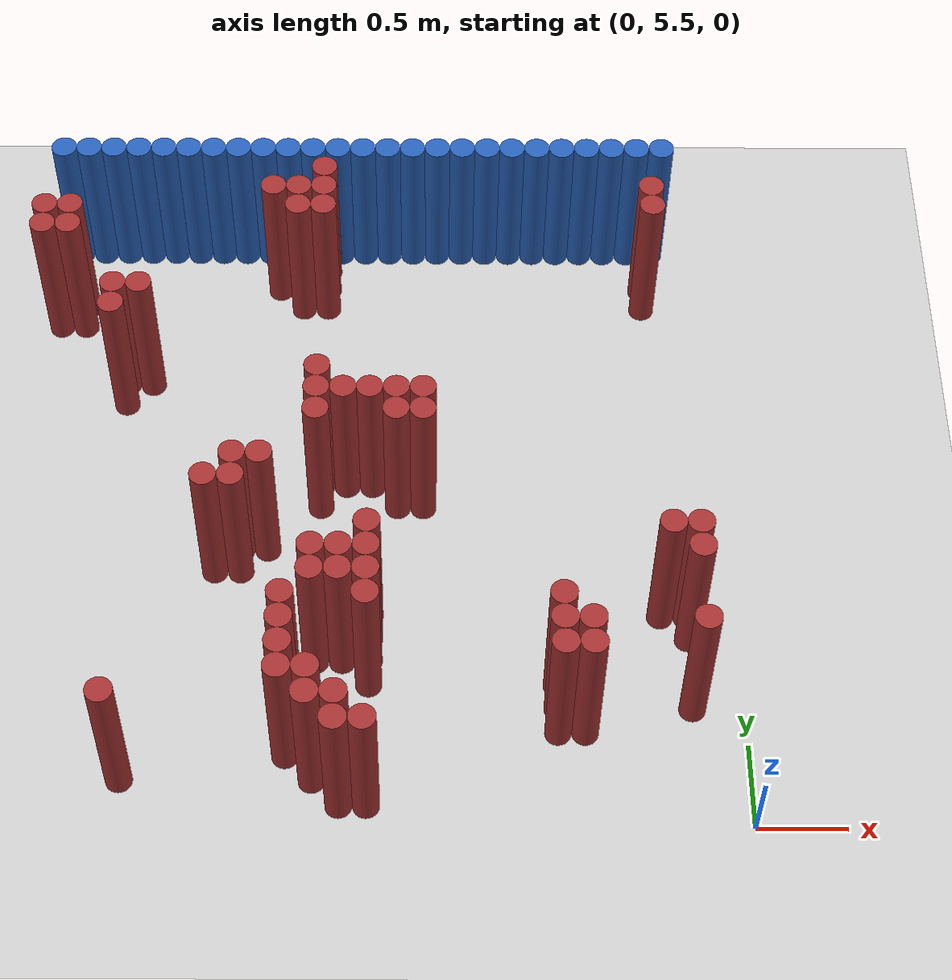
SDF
<sdf version="1.6">
 <world name="barn_world">
  <model name="ground_plane">
   <static>1</static>
   <link name="link">
    <collision name="collision">
     <geometry><plane><normal>0 0 1</normal><size>100 100</size></plane></geometry>
    </collision>
    <visual name="visual">
     <geometry><plane><normal>0 0 1</normal><size>100 100</size></plane></geometry>
     <material>
      <script><uri>file://media/materials/scripts/gazebo.material</uri><name>Gazebo/Grey</name></script>
     </material>
    </visual>
   </link>
  </model>
  <model name="unit_cylinder_185">
   <static>1</static>
   <pose>-4.0500 8.9250 0.5 0 0 0</pose>
   <link name="link">
    <collision name="collision">
     <geometry><cylinder><radius>0.075</radius><length>1</length></cylinder></geometry>
    </collision>
    <visual name="visual">
     <geometry><cylinder><radius>0.075</radius><length>1</length></cylinder></geometry>
     <material><ambient>0.648 0.192 0.192 1</ambient><diffuse>0.648 0.192 0.192 1</diffuse></material>
    </visual>
   </link>
  </model>
  <model name="unit_cylinder_186">
   <static>1</static>
   <pose>-4.0500 9.0750 0.5 0 0 0</pose>
   <link name="link">
    <collision name="collision">
     <geometry><cylinder><radius>0.075</radius><length>1</length></cylinder></geometry>
    </collision>
    <visual name="visual">
     <geometry><cylinder><radius>0.075</radius><length>1</length></cylinder></geometry>
     <material><ambient>0.648 0.192 0.192 1</ambient><diffuse>0.648 0.192 0.192 1</diffuse></material>
    </visual>
   </link>
  </model>
  <model name="unit_cylinder_187">
   <static>1</static>
   <pose>-3.9000 8.9250 0.5 0 0 0</pose>
   <link name="link">
    <collision name="collision">
     <geometry><cylinder><radius>0.075</radius><length>1</length></cylinder></geometry>
    </collision>
    <visual name="visual">
     <geometry><cylinder><radius>0.075</radius><length>1</length></cylinder></geometry>
     <material><ambient>0.648 0.192 0.192 1</ambient><diffuse>0.648 0.192 0.192 1</diffuse></material>
    </visual>
   </link>
  </model>
  <model name="unit_cylinder_188">
   <static>1</static>
   <pose>-3.9000 9.0750 0.5 0 0 0</pose>
   <link name="link">
    <collision name="collision">
     <geometry><cylinder><radius>0.075</radius><length>1</length></cylinder></geometry>
    </collision>
    <visual name="visual">
     <geometry><cylinder><radius>0.075</radius><length>1</length></cylinder></geometry>
     <material><ambient>0.648 0.192 0.192 1</ambient><diffuse>0.648 0.192 0.192 1</diffuse></material>
    </visual>
   </link>
  </model>
  <model name="unit_cylinder_193">
   <static>1</static>
   <pose>-3.6000 8.3250 0.5 0 0 0</pose>
   <link name="link">
    <collision name="collision">
     <geometry><cylinder><radius>0.075</radius><length>1</length></cylinder></geometry>
    </collision>
    <visual name="visual">
     <geometry><cylinder><radius>0.075</radius><length>1</length></cylinder></geometry>
     <material><ambient>0.648 0.192 0.192 1</ambient><diffuse>0.648 0.192 0.192 1</diffuse></material>
    </visual>
   </link>
  </model>
  <model name="unit_cylinder_194">
   <static>1</static>
   <pose>-3.6000 8.4750 0.5 0 0 0</pose>
   <link name="link">
    <collision name="collision">
     <geometry><cylinder><radius>0.075</radius><length>1</length></cylinder></geometry>
    </collision>
    <visual name="visual">
     <geometry><cylinder><radius>0.075</radius><length>1</length></cylinder></geometry>
     <material><ambient>0.648 0.192 0.192 1</ambient><diffuse>0.648 0.192 0.192 1</diffuse></material>
    </visual>
   </link>
  </model>
  <model name="unit_cylinder_199">
   <static>1</static>
   <pose>-3.4500 5.7750 0.5 0 0 0</pose>
   <link name="link">
    <collision name="collision">
     <geometry><cylinder><radius>0.075</radius><length>1</length></cylinder></geometry>
    </collision>
    <visual name="visual">
     <geometry><cylinder><radius>0.075</radius><length>1</length></cylinder></geometry>
     <material><ambient>0.648 0.192 0.192 1</ambient><diffuse>0.648 0.192 0.192 1</diffuse></material>
    </visual>
   </link>
  </model>
  <model name="unit_cylinder_200">
   <static>1</static>
   <pose>-3.4500 8.4750 0.5 0 0 0</pose>
   <link name="link">
    <collision name="collision">
     <geometry><cylinder><radius>0.075</radius><length>1</length></cylinder></geometry>
    </collision>
    <visual name="visual">
     <geometry><cylinder><radius>0.075</radius><length>1</length></cylinder></geometry>
     <material><ambient>0.648 0.192 0.192 1</ambient><diffuse>0.648 0.192 0.192 1</diffuse></material>
    </visual>
   </link>
  </model>
  <model name="unit_cylinder_204">
   <static>1</static>
   <pose>-3.0000 7.1250 0.5 0 0 0</pose>
   <link name="link">
    <collision name="collision">
     <geometry><cylinder><radius>0.075</radius><length>1</length></cylinder></geometry>
    </collision>
    <visual name="visual">
     <geometry><cylinder><radius>0.075</radius><length>1</length></cylinder></geometry>
     <material><ambient>0.648 0.192 0.192 1</ambient><diffuse>0.648 0.192 0.192 1</diffuse></material>
    </visual>
   </link>
  </model>
  <model name="unit_cylinder_205">
   <static>1</static>
   <pose>-2.8500 7.1250 0.5 0 0 0</pose>
   <link name="link">
    <collision name="collision">
     <geometry><cylinder><radius>0.075</radius><length>1</length></cylinder></geometry>
    </collision>
    <visual name="visual">
     <geometry><cylinder><radius>0.075</radius><length>1</length></cylinder></geometry>
     <material><ambient>0.648 0.192 0.192 1</ambient><diffuse>0.648 0.192 0.192 1</diffuse></material>
    </visual>
   </link>
  </model>
  <model name="unit_cylinder_206">
   <static>1</static>
   <pose>-2.8500 7.2750 0.5 0 0 0</pose>
   <link name="link">
    <collision name="collision">
     <geometry><cylinder><radius>0.075</radius><length>1</length></cylinder></geometry>
    </collision>
    <visual name="visual">
     <geometry><cylinder><radius>0.075</radius><length>1</length></cylinder></geometry>
     <material><ambient>0.648 0.192 0.192 1</ambient><diffuse>0.648 0.192 0.192 1</diffuse></material>
    </visual>
   </link>
  </model>
  <model name="unit_cylinder_207">
   <static>1</static>
   <pose>-2.7000 7.2750 0.5 0 0 0</pose>
   <link name="link">
    <collision name="collision">
     <geometry><cylinder><radius>0.075</radius><length>1</length></cylinder></geometry>
    </collision>
    <visual name="visual">
     <geometry><cylinder><radius>0.075</radius><length>1</length></cylinder></geometry>
     <material><ambient>0.648 0.192 0.192 1</ambient><diffuse>0.648 0.192 0.192 1</diffuse></material>
    </visual>
   </link>
  </model>
  <model name="unit_cylinder_208">
   <static>1</static>
   <pose>-2.7000 9.2250 0.5 0 0 0</pose>
   <link name="link">
    <collision name="collision">
     <geometry><cylinder><radius>0.075</radius><length>1</length></cylinder></geometry>
    </collision>
    <visual name="visual">
     <geometry><cylinder><radius>0.075</radius><length>1</length></cylinder></geometry>
     <material><ambient>0.648 0.192 0.192 1</ambient><diffuse>0.648 0.192 0.192 1</diffuse></material>
    </visual>
   </link>
  </model>
  <model name="unit_cylinder_209">
   <static>1</static>
   <pose>-2.5500 5.9250 0.5 0 0 0</pose>
   <link name="link">
    <collision name="collision">
     <geometry><cylinder><radius>0.075</radius><length>1</length></cylinder></geometry>
    </collision>
    <visual name="visual">
     <geometry><cylinder><radius>0.075</radius><length>1</length></cylinder></geometry>
     <material><ambient>0.648 0.192 0.192 1</ambient><diffuse>0.648 0.192 0.192 1</diffuse></material>
    </visual>
   </link>
  </model>
  <model name="unit_cylinder_210">
   <static>1</static>
   <pose>-2.5500 6.0750 0.5 0 0 0</pose>
   <link name="link">
    <collision name="collision">
     <geometry><cylinder><radius>0.075</radius><length>1</length></cylinder></geometry>
    </collision>
    <visual name="visual">
     <geometry><cylinder><radius>0.075</radius><length>1</length></cylinder></geometry>
     <material><ambient>0.648 0.192 0.192 1</ambient><diffuse>0.648 0.192 0.192 1</diffuse></material>
    </visual>
   </link>
  </model>
  <model name="unit_cylinder_211">
   <static>1</static>
   <pose>-2.5500 6.2250 0.5 0 0 0</pose>
   <link name="link">
    <collision name="collision">
     <geometry><cylinder><radius>0.075</radius><length>1</length></cylinder></geometry>
    </collision>
    <visual name="visual">
     <geometry><cylinder><radius>0.075</radius><length>1</length></cylinder></geometry>
     <material><ambient>0.648 0.192 0.192 1</ambient><diffuse>0.648 0.192 0.192 1</diffuse></material>
    </visual>
   </link>
  </model>
  <model name="unit_cylinder_212">
   <static>1</static>
   <pose>-2.5500 6.3750 0.5 0 0 0</pose>
   <link name="link">
    <collision name="collision">
     <geometry><cylinder><radius>0.075</radius><length>1</length></cylinder></geometry>
    </collision>
    <visual name="visual">
     <geometry><cylinder><radius>0.075</radius><length>1</length></cylinder></geometry>
     <material><ambient>0.648 0.192 0.192 1</ambient><diffuse>0.648 0.192 0.192 1</diffuse></material>
    </visual>
   </link>
  </model>
  <model name="unit_cylinder_213">
   <static>1</static>
   <pose>-2.5500 9.0750 0.5 0 0 0</pose>
   <link name="link">
    <collision name="collision">
     <geometry><cylinder><radius>0.075</radius><length>1</length></cylinder></geometry>
    </collision>
    <visual name="visual">
     <geometry><cylinder><radius>0.075</radius><length>1</length></cylinder></geometry>
     <material><ambient>0.648 0.192 0.192 1</ambient><diffuse>0.648 0.192 0.192 1</diffuse></material>
    </visual>
   </link>
  </model>
  <model name="unit_cylinder_214">
   <static>1</static>
   <pose>-2.5500 9.2250 0.5 0 0 0</pose>
   <link name="link">
    <collision name="collision">
     <geometry><cylinder><radius>0.075</radius><length>1</length></cylinder></geometry>
    </collision>
    <visual name="visual">
     <geometry><cylinder><radius>0.075</radius><length>1</length></cylinder></geometry>
     <material><ambient>0.648 0.192 0.192 1</ambient><diffuse>0.648 0.192 0.192 1</diffuse></material>
    </visual>
   </link>
  </model>
  <model name="unit_cylinder_217">
   <static>1</static>
   <pose>-2.4000 5.7750 0.5 0 0 0</pose>
   <link name="link">
    <collision name="collision">
     <geometry><cylinder><radius>0.075</radius><length>1</length></cylinder></geometry>
    </collision>
    <visual name="visual">
     <geometry><cylinder><radius>0.075</radius><length>1</length></cylinder></geometry>
     <material><ambient>0.648 0.192 0.192 1</ambient><diffuse>0.648 0.192 0.192 1</diffuse></material>
    </visual>
   </link>
  </model>
  <model name="unit_cylinder_218">
   <static>1</static>
   <pose>-2.4000 5.9250 0.5 0 0 0</pose>
   <link name="link">
    <collision name="collision">
     <geometry><cylinder><radius>0.075</radius><length>1</length></cylinder></geometry>
    </collision>
    <visual name="visual">
     <geometry><cylinder><radius>0.075</radius><length>1</length></cylinder></geometry>
     <material><ambient>0.648 0.192 0.192 1</ambient><diffuse>0.648 0.192 0.192 1</diffuse></material>
    </visual>
   </link>
  </model>
  <model name="unit_cylinder_219">
   <static>1</static>
   <pose>-2.4000 6.5250 0.5 0 0 0</pose>
   <link name="link">
    <collision name="collision">
     <geometry><cylinder><radius>0.075</radius><length>1</length></cylinder></geometry>
    </collision>
    <visual name="visual">
     <geometry><cylinder><radius>0.075</radius><length>1</length></cylinder></geometry>
     <material><ambient>0.648 0.192 0.192 1</ambient><diffuse>0.648 0.192 0.192 1</diffuse></material>
    </visual>
   </link>
  </model>
  <model name="unit_cylinder_220">
   <static>1</static>
   <pose>-2.4000 6.6750 0.5 0 0 0</pose>
   <link name="link">
    <collision name="collision">
     <geometry><cylinder><radius>0.075</radius><length>1</length></cylinder></geometry>
    </collision>
    <visual name="visual">
     <geometry><cylinder><radius>0.075</radius><length>1</length></cylinder></geometry>
     <material><ambient>0.648 0.192 0.192 1</ambient><diffuse>0.648 0.192 0.192 1</diffuse></material>
    </visual>
   </link>
  </model>
  <model name="unit_cylinder_221">
   <static>1</static>
   <pose>-2.4000 7.5750 0.5 0 0 0</pose>
   <link name="link">
    <collision name="collision">
     <geometry><cylinder><radius>0.075</radius><length>1</length></cylinder></geometry>
    </collision>
    <visual name="visual">
     <geometry><cylinder><radius>0.075</radius><length>1</length></cylinder></geometry>
     <material><ambient>0.648 0.192 0.192 1</ambient><diffuse>0.648 0.192 0.192 1</diffuse></material>
    </visual>
   </link>
  </model>
  <model name="unit_cylinder_222">
   <static>1</static>
   <pose>-2.4000 7.7250 0.5 0 0 0</pose>
   <link name="link">
    <collision name="collision">
     <geometry><cylinder><radius>0.075</radius><length>1</length></cylinder></geometry>
    </collision>
    <visual name="visual">
     <geometry><cylinder><radius>0.075</radius><length>1</length></cylinder></geometry>
     <material><ambient>0.648 0.192 0.192 1</ambient><diffuse>0.648 0.192 0.192 1</diffuse></material>
    </visual>
   </link>
  </model>
  <model name="unit_cylinder_223">
   <static>1</static>
   <pose>-2.4000 7.8750 0.5 0 0 0</pose>
   <link name="link">
    <collision name="collision">
     <geometry><cylinder><radius>0.075</radius><length>1</length></cylinder></geometry>
    </collision>
    <visual name="visual">
     <geometry><cylinder><radius>0.075</radius><length>1</length></cylinder></geometry>
     <material><ambient>0.648 0.192 0.192 1</ambient><diffuse>0.648 0.192 0.192 1</diffuse></material>
    </visual>
   </link>
  </model>
  <model name="unit_cylinder_224">
   <static>1</static>
   <pose>-2.4000 9.0750 0.5 0 0 0</pose>
   <link name="link">
    <collision name="collision">
     <geometry><cylinder><radius>0.075</radius><length>1</length></cylinder></geometry>
    </collision>
    <visual name="visual">
     <geometry><cylinder><radius>0.075</radius><length>1</length></cylinder></geometry>
     <material><ambient>0.648 0.192 0.192 1</ambient><diffuse>0.648 0.192 0.192 1</diffuse></material>
    </visual>
   </link>
  </model>
  <model name="unit_cylinder_225">
   <static>1</static>
   <pose>-2.4000 9.2250 0.5 0 0 0</pose>
   <link name="link">
    <collision name="collision">
     <geometry><cylinder><radius>0.075</radius><length>1</length></cylinder></geometry>
    </collision>
    <visual name="visual">
     <geometry><cylinder><radius>0.075</radius><length>1</length></cylinder></geometry>
     <material><ambient>0.648 0.192 0.192 1</ambient><diffuse>0.648 0.192 0.192 1</diffuse></material>
    </visual>
   </link>
  </model>
  <model name="unit_cylinder_226">
   <static>1</static>
   <pose>-2.4000 9.3750 0.5 0 0 0</pose>
   <link name="link">
    <collision name="collision">
     <geometry><cylinder><radius>0.075</radius><length>1</length></cylinder></geometry>
    </collision>
    <visual name="visual">
     <geometry><cylinder><radius>0.075</radius><length>1</length></cylinder></geometry>
     <material><ambient>0.648 0.192 0.192 1</ambient><diffuse>0.648 0.192 0.192 1</diffuse></material>
    </visual>
   </link>
  </model>
  <model name="unit_cylinder_229">
   <static>1</static>
   <pose>-2.2500 5.6250 0.5 0 0 0</pose>
   <link name="link">
    <collision name="collision">
     <geometry><cylinder><radius>0.075</radius><length>1</length></cylinder></geometry>
    </collision>
    <visual name="visual">
     <geometry><cylinder><radius>0.075</radius><length>1</length></cylinder></geometry>
     <material><ambient>0.648 0.192 0.192 1</ambient><diffuse>0.648 0.192 0.192 1</diffuse></material>
    </visual>
   </link>
  </model>
  <model name="unit_cylinder_230">
   <static>1</static>
   <pose>-2.2500 5.7750 0.5 0 0 0</pose>
   <link name="link">
    <collision name="collision">
     <geometry><cylinder><radius>0.075</radius><length>1</length></cylinder></geometry>
    </collision>
    <visual name="visual">
     <geometry><cylinder><radius>0.075</radius><length>1</length></cylinder></geometry>
     <material><ambient>0.648 0.192 0.192 1</ambient><diffuse>0.648 0.192 0.192 1</diffuse></material>
    </visual>
   </link>
  </model>
  <model name="unit_cylinder_231">
   <static>1</static>
   <pose>-2.2500 6.5250 0.5 0 0 0</pose>
   <link name="link">
    <collision name="collision">
     <geometry><cylinder><radius>0.075</radius><length>1</length></cylinder></geometry>
    </collision>
    <visual name="visual">
     <geometry><cylinder><radius>0.075</radius><length>1</length></cylinder></geometry>
     <material><ambient>0.648 0.192 0.192 1</ambient><diffuse>0.648 0.192 0.192 1</diffuse></material>
    </visual>
   </link>
  </model>
  <model name="unit_cylinder_232">
   <static>1</static>
   <pose>-2.2500 6.6750 0.5 0 0 0</pose>
   <link name="link">
    <collision name="collision">
     <geometry><cylinder><radius>0.075</radius><length>1</length></cylinder></geometry>
    </collision>
    <visual name="visual">
     <geometry><cylinder><radius>0.075</radius><length>1</length></cylinder></geometry>
     <material><ambient>0.648 0.192 0.192 1</ambient><diffuse>0.648 0.192 0.192 1</diffuse></material>
    </visual>
   </link>
  </model>
  <model name="unit_cylinder_233">
   <static>1</static>
   <pose>-2.2500 7.7250 0.5 0 0 0</pose>
   <link name="link">
    <collision name="collision">
     <geometry><cylinder><radius>0.075</radius><length>1</length></cylinder></geometry>
    </collision>
    <visual name="visual">
     <geometry><cylinder><radius>0.075</radius><length>1</length></cylinder></geometry>
     <material><ambient>0.648 0.192 0.192 1</ambient><diffuse>0.648 0.192 0.192 1</diffuse></material>
    </visual>
   </link>
  </model>
  <model name="unit_cylinder_235">
   <static>1</static>
   <pose>-2.1000 5.6250 0.5 0 0 0</pose>
   <link name="link">
    <collision name="collision">
     <geometry><cylinder><radius>0.075</radius><length>1</length></cylinder></geometry>
    </collision>
    <visual name="visual">
     <geometry><cylinder><radius>0.075</radius><length>1</length></cylinder></geometry>
     <material><ambient>0.648 0.192 0.192 1</ambient><diffuse>0.648 0.192 0.192 1</diffuse></material>
    </visual>
   </link>
  </model>
  <model name="unit_cylinder_236">
   <static>1</static>
   <pose>-2.1000 6.3750 0.5 0 0 0</pose>
   <link name="link">
    <collision name="collision">
     <geometry><cylinder><radius>0.075</radius><length>1</length></cylinder></geometry>
    </collision>
    <visual name="visual">
     <geometry><cylinder><radius>0.075</radius><length>1</length></cylinder></geometry>
     <material><ambient>0.648 0.192 0.192 1</ambient><diffuse>0.648 0.192 0.192 1</diffuse></material>
    </visual>
   </link>
  </model>
  <model name="unit_cylinder_237">
   <static>1</static>
   <pose>-2.1000 6.5250 0.5 0 0 0</pose>
   <link name="link">
    <collision name="collision">
     <geometry><cylinder><radius>0.075</radius><length>1</length></cylinder></geometry>
    </collision>
    <visual name="visual">
     <geometry><cylinder><radius>0.075</radius><length>1</length></cylinder></geometry>
     <material><ambient>0.648 0.192 0.192 1</ambient><diffuse>0.648 0.192 0.192 1</diffuse></material>
    </visual>
   </link>
  </model>
  <model name="unit_cylinder_238">
   <static>1</static>
   <pose>-2.1000 6.6750 0.5 0 0 0</pose>
   <link name="link">
    <collision name="collision">
     <geometry><cylinder><radius>0.075</radius><length>1</length></cylinder></geometry>
    </collision>
    <visual name="visual">
     <geometry><cylinder><radius>0.075</radius><length>1</length></cylinder></geometry>
     <material><ambient>0.648 0.192 0.192 1</ambient><diffuse>0.648 0.192 0.192 1</diffuse></material>
    </visual>
   </link>
  </model>
  <model name="unit_cylinder_239">
   <static>1</static>
   <pose>-2.1000 6.8250 0.5 0 0 0</pose>
   <link name="link">
    <collision name="collision">
     <geometry><cylinder><radius>0.075</radius><length>1</length></cylinder></geometry>
    </collision>
    <visual name="visual">
     <geometry><cylinder><radius>0.075</radius><length>1</length></cylinder></geometry>
     <material><ambient>0.648 0.192 0.192 1</ambient><diffuse>0.648 0.192 0.192 1</diffuse></material>
    </visual>
   </link>
  </model>
  <model name="unit_cylinder_240">
   <static>1</static>
   <pose>-2.1000 7.7250 0.5 0 0 0</pose>
   <link name="link">
    <collision name="collision">
     <geometry><cylinder><radius>0.075</radius><length>1</length></cylinder></geometry>
    </collision>
    <visual name="visual">
     <geometry><cylinder><radius>0.075</radius><length>1</length></cylinder></geometry>
     <material><ambient>0.648 0.192 0.192 1</ambient><diffuse>0.648 0.192 0.192 1</diffuse></material>
    </visual>
   </link>
  </model>
  <model name="unit_cylinder_242">
   <static>1</static>
   <pose>-1.9500 7.5750 0.5 0 0 0</pose>
   <link name="link">
    <collision name="collision">
     <geometry><cylinder><radius>0.075</radius><length>1</length></cylinder></geometry>
    </collision>
    <visual name="visual">
     <geometry><cylinder><radius>0.075</radius><length>1</length></cylinder></geometry>
     <material><ambient>0.648 0.192 0.192 1</ambient><diffuse>0.648 0.192 0.192 1</diffuse></material>
    </visual>
   </link>
  </model>
  <model name="unit_cylinder_243">
   <static>1</static>
   <pose>-1.9500 7.7250 0.5 0 0 0</pose>
   <link name="link">
    <collision name="collision">
     <geometry><cylinder><radius>0.075</radius><length>1</length></cylinder></geometry>
    </collision>
    <visual name="visual">
     <geometry><cylinder><radius>0.075</radius><length>1</length></cylinder></geometry>
     <material><ambient>0.648 0.192 0.192 1</ambient><diffuse>0.648 0.192 0.192 1</diffuse></material>
    </visual>
   </link>
  </model>
  <model name="unit_cylinder_244">
   <static>1</static>
   <pose>-1.8000 7.5750 0.5 0 0 0</pose>
   <link name="link">
    <collision name="collision">
     <geometry><cylinder><radius>0.075</radius><length>1</length></cylinder></geometry>
    </collision>
    <visual name="visual">
     <geometry><cylinder><radius>0.075</radius><length>1</length></cylinder></geometry>
     <material><ambient>0.648 0.192 0.192 1</ambient><diffuse>0.648 0.192 0.192 1</diffuse></material>
    </visual>
   </link>
  </model>
  <model name="unit_cylinder_245">
   <static>1</static>
   <pose>-1.8000 7.7250 0.5 0 0 0</pose>
   <link name="link">
    <collision name="collision">
     <geometry><cylinder><radius>0.075</radius><length>1</length></cylinder></geometry>
    </collision>
    <visual name="visual">
     <geometry><cylinder><radius>0.075</radius><length>1</length></cylinder></geometry>
     <material><ambient>0.648 0.192 0.192 1</ambient><diffuse>0.648 0.192 0.192 1</diffuse></material>
    </visual>
   </link>
  </model>
  <model name="unit_cylinder_246">
   <static>1</static>
   <pose>-1.0500 6.0750 0.5 0 0 0</pose>
   <link name="link">
    <collision name="collision">
     <geometry><cylinder><radius>0.075</radius><length>1</length></cylinder></geometry>
    </collision>
    <visual name="visual">
     <geometry><cylinder><radius>0.075</radius><length>1</length></cylinder></geometry>
     <material><ambient>0.648 0.192 0.192 1</ambient><diffuse>0.648 0.192 0.192 1</diffuse></material>
    </visual>
   </link>
  </model>
  <model name="unit_cylinder_247">
   <static>1</static>
   <pose>-1.0500 6.2250 0.5 0 0 0</pose>
   <link name="link">
    <collision name="collision">
     <geometry><cylinder><radius>0.075</radius><length>1</length></cylinder></geometry>
    </collision>
    <visual name="visual">
     <geometry><cylinder><radius>0.075</radius><length>1</length></cylinder></geometry>
     <material><ambient>0.648 0.192 0.192 1</ambient><diffuse>0.648 0.192 0.192 1</diffuse></material>
    </visual>
   </link>
  </model>
  <model name="unit_cylinder_248">
   <static>1</static>
   <pose>-1.0500 6.3750 0.5 0 0 0</pose>
   <link name="link">
    <collision name="collision">
     <geometry><cylinder><radius>0.075</radius><length>1</length></cylinder></geometry>
    </collision>
    <visual name="visual">
     <geometry><cylinder><radius>0.075</radius><length>1</length></cylinder></geometry>
     <material><ambient>0.648 0.192 0.192 1</ambient><diffuse>0.648 0.192 0.192 1</diffuse></material>
    </visual>
   </link>
  </model>
  <model name="unit_cylinder_249">
   <static>1</static>
   <pose>-0.9000 6.0750 0.5 0 0 0</pose>
   <link name="link">
    <collision name="collision">
     <geometry><cylinder><radius>0.075</radius><length>1</length></cylinder></geometry>
    </collision>
    <visual name="visual">
     <geometry><cylinder><radius>0.075</radius><length>1</length></cylinder></geometry>
     <material><ambient>0.648 0.192 0.192 1</ambient><diffuse>0.648 0.192 0.192 1</diffuse></material>
    </visual>
   </link>
  </model>
  <model name="unit_cylinder_250">
   <static>1</static>
   <pose>-0.9000 6.2250 0.5 0 0 0</pose>
   <link name="link">
    <collision name="collision">
     <geometry><cylinder><radius>0.075</radius><length>1</length></cylinder></geometry>
    </collision>
    <visual name="visual">
     <geometry><cylinder><radius>0.075</radius><length>1</length></cylinder></geometry>
     <material><ambient>0.648 0.192 0.192 1</ambient><diffuse>0.648 0.192 0.192 1</diffuse></material>
    </visual>
   </link>
  </model>
  <model name="unit_cylinder_251">
   <static>1</static>
   <pose>-0.4500 6.8250 0.5 0 0 0</pose>
   <link name="link">
    <collision name="collision">
     <geometry><cylinder><radius>0.075</radius><length>1</length></cylinder></geometry>
    </collision>
    <visual name="visual">
     <geometry><cylinder><radius>0.075</radius><length>1</length></cylinder></geometry>
     <material><ambient>0.648 0.192 0.192 1</ambient><diffuse>0.648 0.192 0.192 1</diffuse></material>
    </visual>
   </link>
  </model>
  <model name="unit_cylinder_252">
   <static>1</static>
   <pose>-0.4500 9.0750 0.5 0 0 0</pose>
   <link name="link">
    <collision name="collision">
     <geometry><cylinder><radius>0.075</radius><length>1</length></cylinder></geometry>
    </collision>
    <visual name="visual">
     <geometry><cylinder><radius>0.075</radius><length>1</length></cylinder></geometry>
     <material><ambient>0.648 0.192 0.192 1</ambient><diffuse>0.648 0.192 0.192 1</diffuse></material>
    </visual>
   </link>
  </model>
  <model name="unit_cylinder_253">
   <static>1</static>
   <pose>-0.4500 9.2250 0.5 0 0 0</pose>
   <link name="link">
    <collision name="collision">
     <geometry><cylinder><radius>0.075</radius><length>1</length></cylinder></geometry>
    </collision>
    <visual name="visual">
     <geometry><cylinder><radius>0.075</radius><length>1</length></cylinder></geometry>
     <material><ambient>0.648 0.192 0.192 1</ambient><diffuse>0.648 0.192 0.192 1</diffuse></material>
    </visual>
   </link>
  </model>
  <model name="unit_cylinder_254">
   <static>1</static>
   <pose>-0.3000 6.2250 0.5 0 0 0</pose>
   <link name="link">
    <collision name="collision">
     <geometry><cylinder><radius>0.075</radius><length>1</length></cylinder></geometry>
    </collision>
    <visual name="visual">
     <geometry><cylinder><radius>0.075</radius><length>1</length></cylinder></geometry>
     <material><ambient>0.648 0.192 0.192 1</ambient><diffuse>0.648 0.192 0.192 1</diffuse></material>
    </visual>
   </link>
  </model>
  <model name="unit_cylinder_255">
   <static>1</static>
   <pose>-0.3000 6.6750 0.5 0 0 0</pose>
   <link name="link">
    <collision name="collision">
     <geometry><cylinder><radius>0.075</radius><length>1</length></cylinder></geometry>
    </collision>
    <visual name="visual">
     <geometry><cylinder><radius>0.075</radius><length>1</length></cylinder></geometry>
     <material><ambient>0.648 0.192 0.192 1</ambient><diffuse>0.648 0.192 0.192 1</diffuse></material>
    </visual>
   </link>
  </model>
  <model name="unit_cylinder_256">
   <static>1</static>
   <pose>-0.3000 6.8250 0.5 0 0 0</pose>
   <link name="link">
    <collision name="collision">
     <geometry><cylinder><radius>0.075</radius><length>1</length></cylinder></geometry>
    </collision>
    <visual name="visual">
     <geometry><cylinder><radius>0.075</radius><length>1</length></cylinder></geometry>
     <material><ambient>0.648 0.192 0.192 1</ambient><diffuse>0.648 0.192 0.192 1</diffuse></material>
    </visual>
   </link>
  </model>
  <model name="unit_cylinder_314">
   <static>1</static>
   <pose>-0.3750 9.5250 0.5 0 0 0</pose>
   <link name="link">
    <collision name="collision">
     <geometry><cylinder><radius>0.075</radius><length>1</length></cylinder></geometry>
    </collision>
    <visual name="visual">
     <geometry><cylinder><radius>0.075</radius><length>1</length></cylinder></geometry>
     <material><ambient>0.152 0.379 0.72 1</ambient><diffuse>0.152 0.379 0.72 1</diffuse></material>
    </visual>
   </link>
  </model>
  <model name="unit_cylinder_315">
   <static>1</static>
   <pose>-0.5250 9.5250 0.5 0 0 0</pose>
   <link name="link">
    <collision name="collision">
     <geometry><cylinder><radius>0.075</radius><length>1</length></cylinder></geometry>
    </collision>
    <visual name="visual">
     <geometry><cylinder><radius>0.075</radius><length>1</length></cylinder></geometry>
     <material><ambient>0.152 0.379 0.72 1</ambient><diffuse>0.152 0.379 0.72 1</diffuse></material>
    </visual>
   </link>
  </model>
  <model name="unit_cylinder_316">
   <static>1</static>
   <pose>-0.6750 9.5250 0.5 0 0 0</pose>
   <link name="link">
    <collision name="collision">
     <geometry><cylinder><radius>0.075</radius><length>1</length></cylinder></geometry>
    </collision>
    <visual name="visual">
     <geometry><cylinder><radius>0.075</radius><length>1</length></cylinder></geometry>
     <material><ambient>0.152 0.379 0.72 1</ambient><diffuse>0.152 0.379 0.72 1</diffuse></material>
    </visual>
   </link>
  </model>
  <model name="unit_cylinder_317">
   <static>1</static>
   <pose>-0.8250 9.5250 0.5 0 0 0</pose>
   <link name="link">
    <collision name="collision">
     <geometry><cylinder><radius>0.075</radius><length>1</length></cylinder></geometry>
    </collision>
    <visual name="visual">
     <geometry><cylinder><radius>0.075</radius><length>1</length></cylinder></geometry>
     <material><ambient>0.152 0.379 0.72 1</ambient><diffuse>0.152 0.379 0.72 1</diffuse></material>
    </visual>
   </link>
  </model>
  <model name="unit_cylinder_318">
   <static>1</static>
   <pose>-0.9750 9.5250 0.5 0 0 0</pose>
   <link name="link">
    <collision name="collision">
     <geometry><cylinder><radius>0.075</radius><length>1</length></cylinder></geometry>
    </collision>
    <visual name="visual">
     <geometry><cylinder><radius>0.075</radius><length>1</length></cylinder></geometry>
     <material><ambient>0.152 0.379 0.72 1</ambient><diffuse>0.152 0.379 0.72 1</diffuse></material>
    </visual>
   </link>
  </model>
  <model name="unit_cylinder_319">
   <static>1</static>
   <pose>-1.1250 9.5250 0.5 0 0 0</pose>
   <link name="link">
    <collision name="collision">
     <geometry><cylinder><radius>0.075</radius><length>1</length></cylinder></geometry>
    </collision>
    <visual name="visual">
     <geometry><cylinder><radius>0.075</radius><length>1</length></cylinder></geometry>
     <material><ambient>0.152 0.379 0.72 1</ambient><diffuse>0.152 0.379 0.72 1</diffuse></material>
    </visual>
   </link>
  </model>
  <model name="unit_cylinder_320">
   <static>1</static>
   <pose>-1.2750 9.5250 0.5 0 0 0</pose>
   <link name="link">
    <collision name="collision">
     <geometry><cylinder><radius>0.075</radius><length>1</length></cylinder></geometry>
    </collision>
    <visual name="visual">
     <geometry><cylinder><radius>0.075</radius><length>1</length></cylinder></geometry>
     <material><ambient>0.152 0.379 0.72 1</ambient><diffuse>0.152 0.379 0.72 1</diffuse></material>
    </visual>
   </link>
  </model>
  <model name="unit_cylinder_321">
   <static>1</static>
   <pose>-1.4250 9.5250 0.5 0 0 0</pose>
   <link name="link">
    <collision name="collision">
     <geometry><cylinder><radius>0.075</radius><length>1</length></cylinder></geometry>
    </collision>
    <visual name="visual">
     <geometry><cylinder><radius>0.075</radius><length>1</length></cylinder></geometry>
     <material><ambient>0.152 0.379 0.72 1</ambient><diffuse>0.152 0.379 0.72 1</diffuse></material>
    </visual>
   </link>
  </model>
  <model name="unit_cylinder_322">
   <static>1</static>
   <pose>-1.5750 9.5250 0.5 0 0 0</pose>
   <link name="link">
    <collision name="collision">
     <geometry><cylinder><radius>0.075</radius><length>1</length></cylinder></geometry>
    </collision>
    <visual name="visual">
     <geometry><cylinder><radius>0.075</radius><length>1</length></cylinder></geometry>
     <material><ambient>0.152 0.379 0.72 1</ambient><diffuse>0.152 0.379 0.72 1</diffuse></material>
    </visual>
   </link>
  </model>
  <model name="unit_cylinder_323">
   <static>1</static>
   <pose>-1.7250 9.5250 0.5 0 0 0</pose>
   <link name="link">
    <collision name="collision">
     <geometry><cylinder><radius>0.075</radius><length>1</length></cylinder></geometry>
    </collision>
    <visual name="visual">
     <geometry><cylinder><radius>0.075</radius><length>1</length></cylinder></geometry>
     <material><ambient>0.152 0.379 0.72 1</ambient><diffuse>0.152 0.379 0.72 1</diffuse></material>
    </visual>
   </link>
  </model>
  <model name="unit_cylinder_324">
   <static>1</static>
   <pose>-1.8750 9.5250 0.5 0 0 0</pose>
   <link name="link">
    <collision name="collision">
     <geometry><cylinder><radius>0.075</radius><length>1</length></cylinder></geometry>
    </collision>
    <visual name="visual">
     <geometry><cylinder><radius>0.075</radius><length>1</length></cylinder></geometry>
     <material><ambient>0.152 0.379 0.72 1</ambient><diffuse>0.152 0.379 0.72 1</diffuse></material>
    </visual>
   </link>
  </model>
  <model name="unit_cylinder_325">
   <static>1</static>
   <pose>-2.0250 9.5250 0.5 0 0 0</pose>
   <link name="link">
    <collision name="collision">
     <geometry><cylinder><radius>0.075</radius><length>1</length></cylinder></geometry>
    </collision>
    <visual name="visual">
     <geometry><cylinder><radius>0.075</radius><length>1</length></cylinder></geometry>
     <material><ambient>0.152 0.379 0.72 1</ambient><diffuse>0.152 0.379 0.72 1</diffuse></material>
    </visual>
   </link>
  </model>
  <model name="unit_cylinder_326">
   <static>1</static>
   <pose>-2.1750 9.5250 0.5 0 0 0</pose>
   <link name="link">
    <collision name="collision">
     <geometry><cylinder><radius>0.075</radius><length>1</length></cylinder></geometry>
    </collision>
    <visual name="visual">
     <geometry><cylinder><radius>0.075</radius><length>1</length></cylinder></geometry>
     <material><ambient>0.152 0.379 0.72 1</ambient><diffuse>0.152 0.379 0.72 1</diffuse></material>
    </visual>
   </link>
  </model>
  <model name="unit_cylinder_327">
   <static>1</static>
   <pose>-2.3250 9.5250 0.5 0 0 0</pose>
   <link name="link">
    <collision name="collision">
     <geometry><cylinder><radius>0.075</radius><length>1</length></cylinder></geometry>
    </collision>
    <visual name="visual">
     <geometry><cylinder><radius>0.075</radius><length>1</length></cylinder></geometry>
     <material><ambient>0.152 0.379 0.72 1</ambient><diffuse>0.152 0.379 0.72 1</diffuse></material>
    </visual>
   </link>
  </model>
  <model name="unit_cylinder_328">
   <static>1</static>
   <pose>-2.4750 9.5250 0.5 0 0 0</pose>
   <link name="link">
    <collision name="collision">
     <geometry><cylinder><radius>0.075</radius><length>1</length></cylinder></geometry>
    </collision>
    <visual name="visual">
     <geometry><cylinder><radius>0.075</radius><length>1</length></cylinder></geometry>
     <material><ambient>0.152 0.379 0.72 1</ambient><diffuse>0.152 0.379 0.72 1</diffuse></material>
    </visual>
   </link>
  </model>
  <model name="unit_cylinder_329">
   <static>1</static>
   <pose>-2.6250 9.5250 0.5 0 0 0</pose>
   <link name="link">
    <collision name="collision">
     <geometry><cylinder><radius>0.075</radius><length>1</length></cylinder></geometry>
    </collision>
    <visual name="visual">
     <geometry><cylinder><radius>0.075</radius><length>1</length></cylinder></geometry>
     <material><ambient>0.152 0.379 0.72 1</ambient><diffuse>0.152 0.379 0.72 1</diffuse></material>
    </visual>
   </link>
  </model>
  <model name="unit_cylinder_330">
   <static>1</static>
   <pose>-2.7750 9.5250 0.5 0 0 0</pose>
   <link name="link">
    <collision name="collision">
     <geometry><cylinder><radius>0.075</radius><length>1</length></cylinder></geometry>
    </collision>
    <visual name="visual">
     <geometry><cylinder><radius>0.075</radius><length>1</length></cylinder></geometry>
     <material><ambient>0.152 0.379 0.72 1</ambient><diffuse>0.152 0.379 0.72 1</diffuse></material>
    </visual>
   </link>
  </model>
  <model name="unit_cylinder_331">
   <static>1</static>
   <pose>-2.9250 9.5250 0.5 0 0 0</pose>
   <link name="link">
    <collision name="collision">
     <geometry><cylinder><radius>0.075</radius><length>1</length></cylinder></geometry>
    </collision>
    <visual name="visual">
     <geometry><cylinder><radius>0.075</radius><length>1</length></cylinder></geometry>
     <material><ambient>0.152 0.379 0.72 1</ambient><diffuse>0.152 0.379 0.72 1</diffuse></material>
    </visual>
   </link>
  </model>
  <model name="unit_cylinder_332">
   <static>1</static>
   <pose>-3.0750 9.5250 0.5 0 0 0</pose>
   <link name="link">
    <collision name="collision">
     <geometry><cylinder><radius>0.075</radius><length>1</length></cylinder></geometry>
    </collision>
    <visual name="visual">
     <geometry><cylinder><radius>0.075</radius><length>1</length></cylinder></geometry>
     <material><ambient>0.152 0.379 0.72 1</ambient><diffuse>0.152 0.379 0.72 1</diffuse></material>
    </visual>
   </link>
  </model>
  <model name="unit_cylinder_333">
   <static>1</static>
   <pose>-3.2250 9.5250 0.5 0 0 0</pose>
   <link name="link">
    <collision name="collision">
     <geometry><cylinder><radius>0.075</radius><length>1</length></cylinder></geometry>
    </collision>
    <visual name="visual">
     <geometry><cylinder><radius>0.075</radius><length>1</length></cylinder></geometry>
     <material><ambient>0.152 0.379 0.72 1</ambient><diffuse>0.152 0.379 0.72 1</diffuse></material>
    </visual>
   </link>
  </model>
  <model name="unit_cylinder_334">
   <static>1</static>
   <pose>-3.3750 9.5250 0.5 0 0 0</pose>
   <link name="link">
    <collision name="collision">
     <geometry><cylinder><radius>0.075</radius><length>1</length></cylinder></geometry>
    </collision>
    <visual name="visual">
     <geometry><cylinder><radius>0.075</radius><length>1</length></cylinder></geometry>
     <material><ambient>0.152 0.379 0.72 1</ambient><diffuse>0.152 0.379 0.72 1</diffuse></material>
    </visual>
   </link>
  </model>
  <model name="unit_cylinder_335">
   <static>1</static>
   <pose>-3.5250 9.5250 0.5 0 0 0</pose>
   <link name="link">
    <collision name="collision">
     <geometry><cylinder><radius>0.075</radius><length>1</length></cylinder></geometry>
    </collision>
    <visual name="visual">
     <geometry><cylinder><radius>0.075</radius><length>1</length></cylinder></geometry>
     <material><ambient>0.152 0.379 0.72 1</ambient><diffuse>0.152 0.379 0.72 1</diffuse></material>
    </visual>
   </link>
  </model>
  <model name="unit_cylinder_336">
   <static>1</static>
   <pose>-3.6750 9.5250 0.5 0 0 0</pose>
   <link name="link">
    <collision name="collision">
     <geometry><cylinder><radius>0.075</radius><length>1</length></cylinder></geometry>
    </collision>
    <visual name="visual">
     <geometry><cylinder><radius>0.075</radius><length>1</length></cylinder></geometry>
     <material><ambient>0.152 0.379 0.72 1</ambient><diffuse>0.152 0.379 0.72 1</diffuse></material>
    </visual>
   </link>
  </model>
  <model name="unit_cylinder_337">
   <static>1</static>
   <pose>-3.8250 9.5250 0.5 0 0 0</pose>
   <link name="link">
    <collision name="collision">
     <geometry><cylinder><radius>0.075</radius><length>1</length></cylinder></geometry>
    </collision>
    <visual name="visual">
     <geometry><cylinder><radius>0.075</radius><length>1</length></cylinder></geometry>
     <material><ambient>0.152 0.379 0.72 1</ambient><diffuse>0.152 0.379 0.72 1</diffuse></material>
    </visual>
   </link>
  </model>
  <model name="unit_cylinder_338">
   <static>1</static>
   <pose>-3.9750 9.5250 0.5 0 0 0</pose>
   <link name="link">
    <collision name="collision">
     <geometry><cylinder><radius>0.075</radius><length>1</length></cylinder></geometry>
    </collision>
    <visual name="visual">
     <geometry><cylinder><radius>0.075</radius><length>1</length></cylinder></geometry>
     <material><ambient>0.152 0.379 0.72 1</ambient><diffuse>0.152 0.379 0.72 1</diffuse></material>
    </visual>
   </link>
  </model>
 </world>
</sdf>
